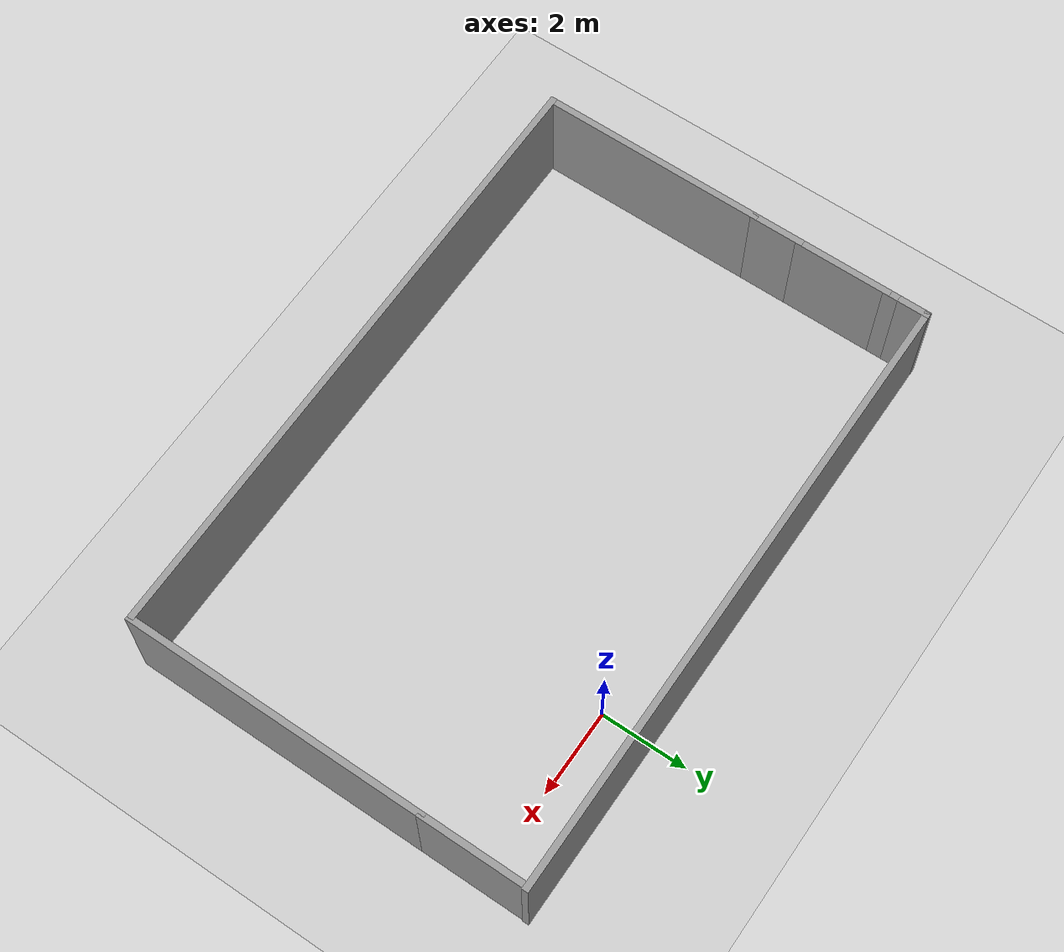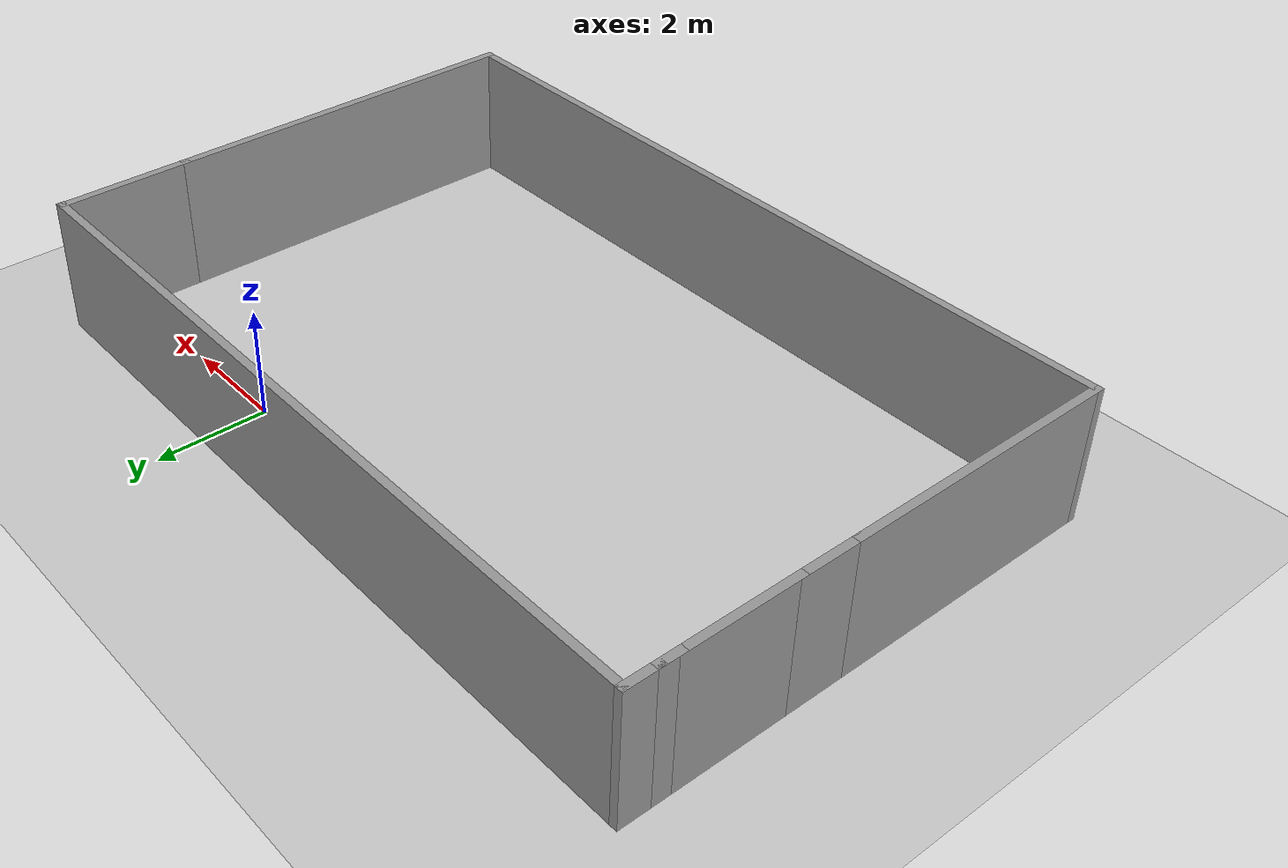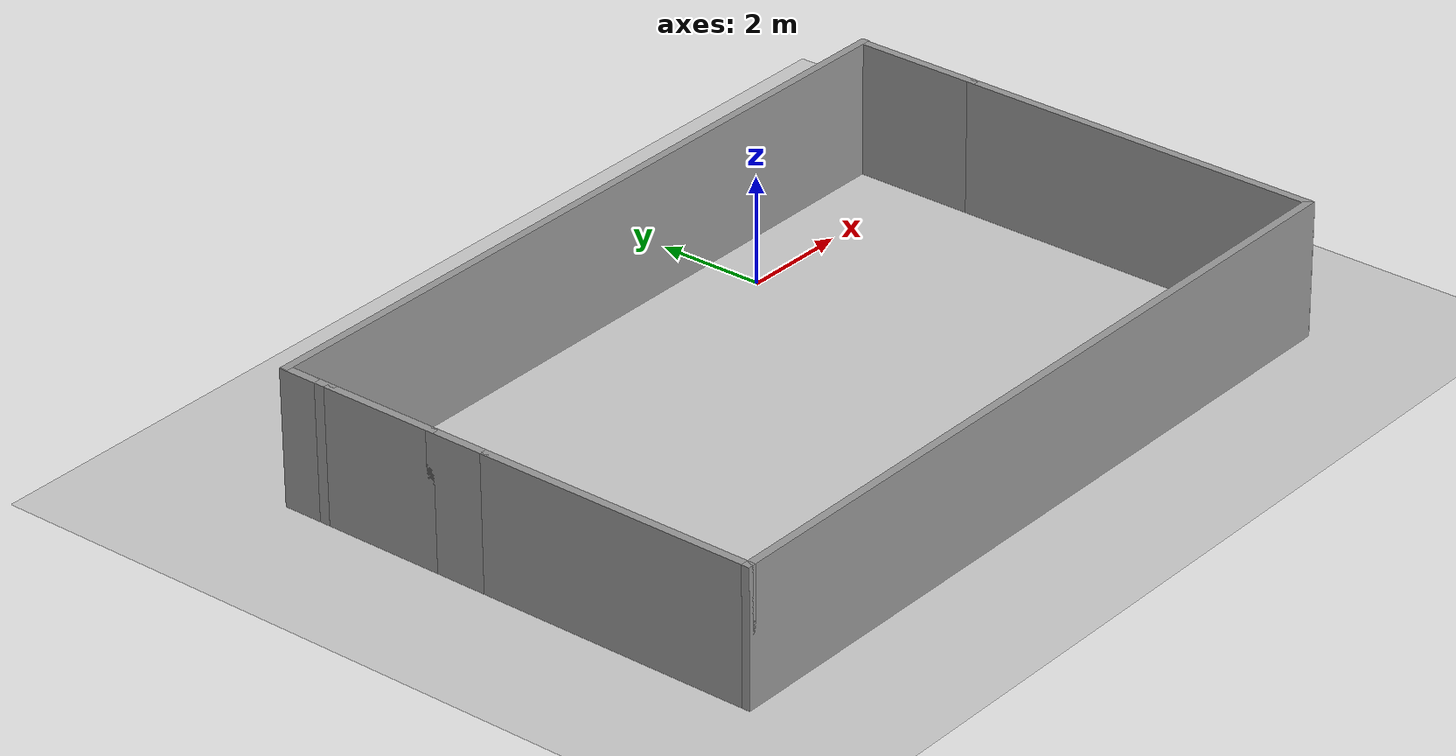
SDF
<sdf version="1.7">
 <world name="default">
  <scene><ambient>0.4 0.4 0.4 1</ambient><background>0.7 0.7 0.7 1</background><shadows>1</shadows></scene>
  <light name="sun" type="directional">
   <pose>0 0 10 0 -0 0</pose>
   <diffuse>0.8 0.8 0.8 1</diffuse>
   <specular>0.2 0.2 0.2 1</specular>
   <attenuation>
    <range>1000</range>
    <constant>0.9</constant>
    <linear>0.01</linear>
    <quadratic>0.001</quadratic>
   </attenuation>
   <direction>-0.5 0.1 -0.9</direction>
   <spot><inner_angle>0</inner_angle><outer_angle>0</outer_angle><falloff>0</falloff></spot>
  </light>
  <model name="ground_plane">
   <static>1</static>
   <link name="link">
    <collision name="collision">
     <geometry><plane><normal>0 0 1</normal><size>100 100</size></plane></geometry>
     <surface><friction><ode><mu>100</mu><mu2>50</mu2></ode></friction></surface>
    </collision>
    <visual name="visual">
     <cast_shadows>0</cast_shadows>
     <geometry><plane><normal>0 0 1</normal><size>100 100</size></plane></geometry>
     <material>
      <script><uri>file://media/materials/scripts/gazebo.material</uri><name>Gazebo/Grey</name></script>
     </material>
    </visual>
   </link>
  </model>
  <physics type="ode">
   <real_time_update_rate>0</real_time_update_rate>
   <max_step_size>0.001</max_step_size>
   <real_time_factor>1</real_time_factor>
   <ode>
    <solver>
     <type>quick</type>
     <iters>150</iters>
     <precon_iters>0</precon_iters>
     <sor>1.4</sor>
     <use_dynamic_moi_rescaling>1</use_dynamic_moi_rescaling>
    </solver>
    <constraints>
     <cfm>1e-05</cfm>
     <erp>0.2</erp>
     <contact_max_correcting_vel>2000</contact_max_correcting_vel>
     <contact_surface_layer>0.01</contact_surface_layer>
    </constraints>
   </ode>
  </physics>
  <gravity>0 0 -9.8</gravity>
  <magnetic_field>6e-06 2.3e-05 -4.2e-05</magnetic_field>
  <atmosphere type="adiabatic"/>
  <spherical_coordinates>
   <surface_model>EARTH_WGS84</surface_model>
   <latitude_deg>0</latitude_deg>
   <longitude_deg>0</longitude_deg>
   <elevation>0</elevation>
   <heading_deg>0</heading_deg>
  </spherical_coordinates>
  <model name="half_square">
   <pose>-2.93442 -3.48981 0 0 -0 0</pose>
   <link name="Wall_0">
    <collision name="Wall_0_Collision">
     <geometry><box><size>14.5 0.15 2.5</size></box></geometry>
     <pose>0 0 1.25 0 -0 0</pose>
    </collision>
    <visual name="Wall_0_Visual">
     <pose>0 0 1.25 0 -0 0</pose>
     <geometry><box><size>14.5 0.15 2.5</size></box></geometry>
     <material>
      <script><uri>file://media/materials/scripts/gazebo.material</uri><name>Gazebo/Grey</name></script>
      <ambient>1 1 1 1</ambient>
     </material>
     <meta><layer>0</layer></meta>
    </visual>
    <pose>-0.010056 -4.61503 0 0 -0 0</pose>
   </link>
   <link name="Wall_11">
    <collision name="Wall_11_Collision">
     <geometry><box><size>2.5 0.15 2.5</size></box></geometry>
     <pose>0 0 1.25 0 -0 0</pose>
    </collision>
    <visual name="Wall_11_Visual">
     <pose>0 0 1.25 0 -0 0</pose>
     <geometry><box><size>2.5 0.15 2.5</size></box></geometry>
     <material>
      <script><uri>file://media/materials/scripts/gazebo.material</uri><name>Gazebo/Grey</name></script>
      <ambient>1 1 1 1</ambient>
     </material>
     <meta><layer>0</layer></meta>
    </visual>
    <pose>7.16494 3.40997 0 0 -0 1.5708</pose>
   </link>
   <link name="Wall_13">
    <collision name="Wall_13_Collision">
     <geometry><box><size>0.730235 0.15 2.5</size></box></geometry>
     <pose>0 0 1.25 0 -0 0</pose>
    </collision>
    <visual name="Wall_13_Visual">
     <pose>0 0 1.25 0 -0 0</pose>
     <geometry><box><size>0.730235 0.15 2.5</size></box></geometry>
     <material>
      <script><uri>file://media/materials/scripts/gazebo.material</uri><name>Gazebo/Grey</name></script>
      <ambient>1 1 1 1</ambient>
     </material>
     <meta><layer>0</layer></meta>
    </visual>
    <pose>-7.18506 4.32491 0 0 -0 1.5708</pose>
   </link>
   <link name="Wall_14">
    <collision name="Wall_14_Collision">
     <geometry><box><size>14.5 0.15 2.5</size></box></geometry>
     <pose>0 0 1.25 0 -0 0</pose>
    </collision>
    <visual name="Wall_14_Visual">
     <pose>0 0 1.25 0 -0 0</pose>
     <geometry><box><size>14.5 0.15 2.5</size></box></geometry>
     <material>
      <script><uri>file://media/materials/scripts/gazebo.material</uri><name>Gazebo/Grey</name></script>
      <ambient>1 1 1 1</ambient>
     </material>
     <meta><layer>0</layer></meta>
    </visual>
    <pose>0.010057 4.61486 0 0 -0 0</pose>
   </link>
   <link name="Wall_2">
    <collision name="Wall_2_Collision">
     <geometry><box><size>5.25 0.15 2.5</size></box></geometry>
     <pose>0 0 1.25 0 -0 0</pose>
    </collision>
    <visual name="Wall_2_Visual">
     <pose>0 0 1.25 0 -0 0</pose>
     <geometry><box><size>5.25 0.15 2.5</size></box></geometry>
     <material>
      <script><uri>file://media/materials/scripts/gazebo.material</uri><name>Gazebo/Grey</name></script>
      <ambient>1 1 1 1</ambient>
     </material>
     <meta><layer>0</layer></meta>
    </visual>
    <pose>-7.18506 -2.06503 0 0 -0 1.5708</pose>
   </link>
   <link name="Wall_4">
    <collision name="Wall_4_Collision">
     <geometry><box><size>7 0.15 2.5</size></box></geometry>
     <pose>0 0 1.25 0 -0 0</pose>
    </collision>
    <visual name="Wall_4_Visual">
     <pose>0 0 1.25 0 -0 0</pose>
     <geometry><box><size>7 0.15 2.5</size></box></geometry>
     <material>
      <script><uri>file://media/materials/scripts/gazebo.material</uri><name>Gazebo/Grey</name></script>
      <ambient>1 1 1 1</ambient>
     </material>
     <meta><layer>0</layer></meta>
    </visual>
    <pose>7.16494 -1.19003 0 0 -0 1.5708</pose>
   </link>
   <link name="Wall_6">
    <collision name="Wall_6_Collision">
     <geometry><box><size>1.25 0.15 2.5</size></box></geometry>
     <pose>0 0 1.25 0 -0 0</pose>
    </collision>
    <visual name="Wall_6_Visual">
     <pose>0 0 1.25 0 -0 0</pose>
     <geometry><box><size>1.25 0.15 2.5</size></box></geometry>
     <material>
      <script><uri>file://media/materials/scripts/gazebo.material</uri><name>Gazebo/Grey</name></script>
      <ambient>1 1 1 1</ambient>
     </material>
     <meta><layer>0</layer></meta>
    </visual>
    <pose>-7.18506 1.03497 0 0 -0 1.5708</pose>
   </link>
   <link name="Wall_8">
    <collision name="Wall_8_Collision">
     <geometry><box><size>2.25 0.15 2.5</size></box></geometry>
     <pose>0 0 1.25 0 -0 0</pose>
    </collision>
    <visual name="Wall_8_Visual">
     <pose>0 0 1.25 0 -0 0</pose>
     <geometry><box><size>2.25 0.15 2.5</size></box></geometry>
     <material>
      <script><uri>file://media/materials/scripts/gazebo.material</uri><name>Gazebo/Grey</name></script>
      <ambient>1 1 1 1</ambient>
     </material>
     <meta><layer>0</layer></meta>
    </visual>
    <pose>-7.18506 2.63497 0 0 -0 1.5708</pose>
   </link>
   <link name="Wall_9">
    <collision name="Wall_9_Collision">
     <geometry><box><size>0.5 0.15 2.5</size></box></geometry>
     <pose>0 0 1.25 0 -0 0</pose>
    </collision>
    <visual name="Wall_9_Visual">
     <pose>0 0 1.25 0 -0 0</pose>
     <geometry><box><size>0.5 0.15 2.5</size></box></geometry>
     <material>
      <script><uri>file://media/materials/scripts/gazebo.material</uri><name>Gazebo/Grey</name></script>
      <ambient>1 1 1 1</ambient>
     </material>
     <meta><layer>0</layer></meta>
    </visual>
    <pose>-7.18506 3.85997 0 0 -0 1.5708</pose>
   </link>
   <static>1</static>
  </model>
  <plugin name="gazebo_occupancy_map" filename="libgazebo_2Dmap_plugin.so">
   <map_resolution>0.02</map_resolution>
   <map_height>0.7</map_height>
   <map_size_x>20</map_size_x>
   <map_size_y>20</map_size_y>
   <init_robot_x>0</init_robot_x>
   <init_robot_y>0</init_robot_y>
  </plugin>
 </world>
</sdf>
